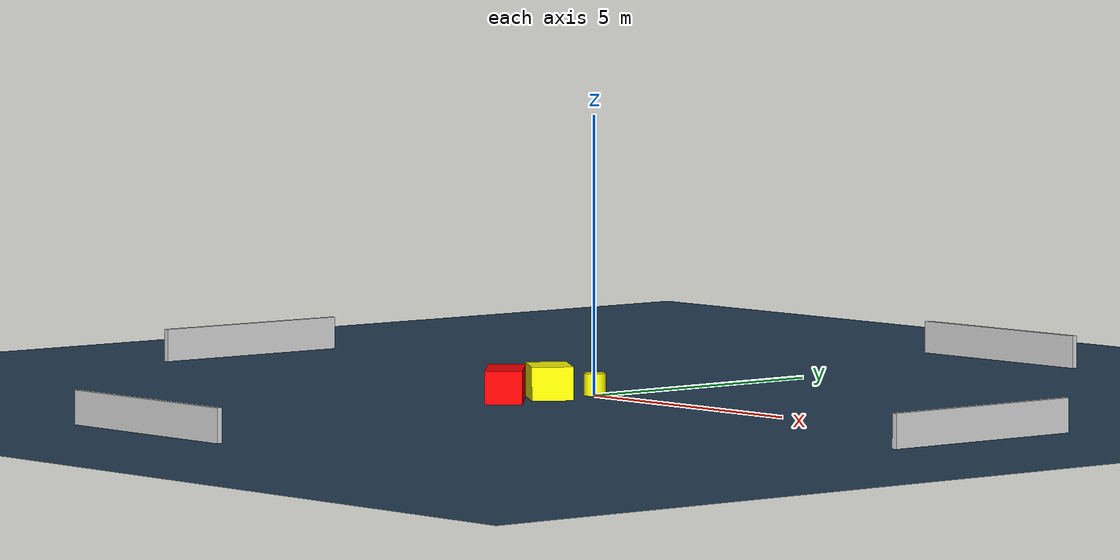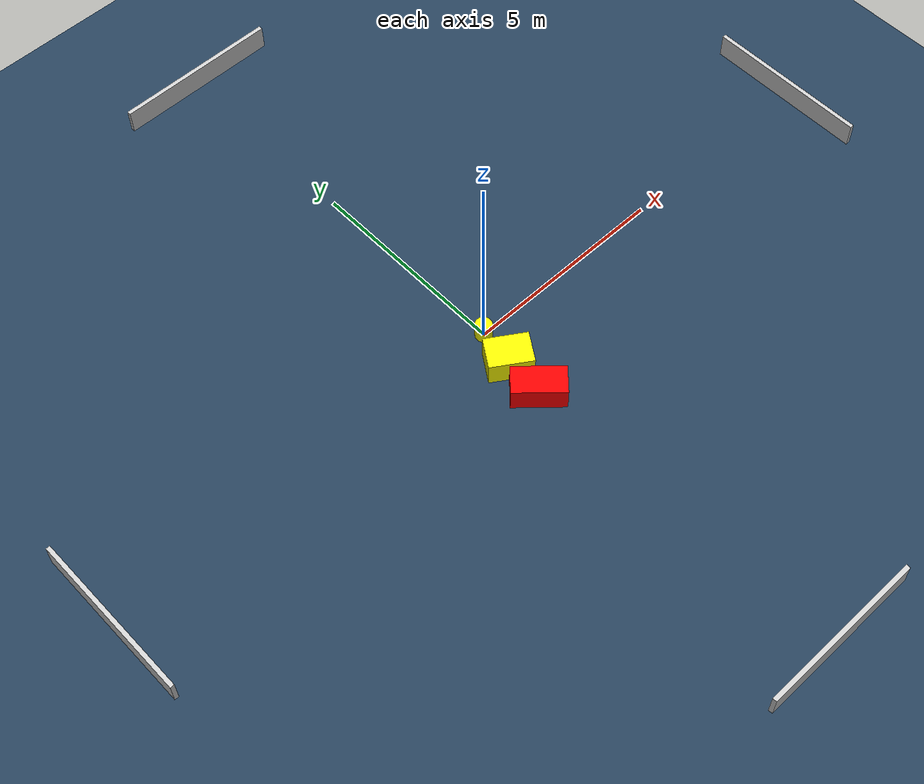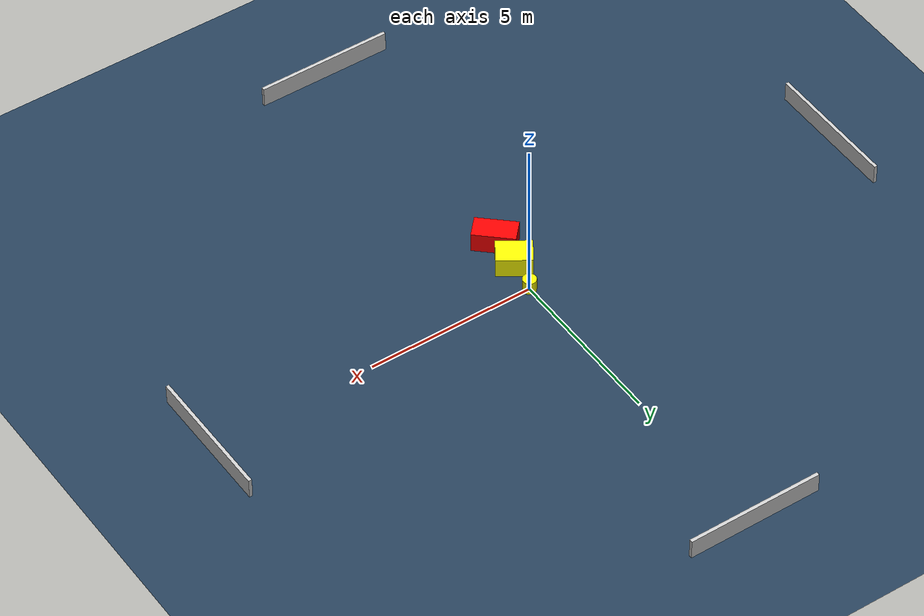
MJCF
<?xml version="1.0" ?>
<mujoco model="generated_environment">
  <option timestep="0.01" integrator="RK4" cone="elliptic"/>
  <default>
    <geom density="1"/>
  </default>
  <asset>
    <texture builtin="gradient" height="3072" name="skybox" rgb1="0.3 0.5 0.7" rgb2="0 0 0" type="skybox" width="512"/>
    <texture builtin="checker" height="300" name="groundplane" rgb1="0.2 0.3 0.4" rgb2="0.1 0.2 0.3" type="2d" width="300"/>
    <material name="groundplane" reflectance="0.2" texrepeat="5 5" texture="groundplane"/>
  </asset>
  <worldbody>
    <light dir="0 0 -1" directional="true" pos="0 0 1.5"/>
    <geom condim="3" friction="0.5 0.005 0.001" material="groundplane" name="floor" pos="0 0 0" size="0 0 0.05" type="plane"/>
    <body name="walls">
      <geom name="wall_1" condim="4" pos="-10.0 0.0 0.3" rgba="0.800000011920929 0.800000011920929 0.800000011920929 1.0" size="0.05 2.0 0.3" type="box"/>
      <geom name="wall_2" condim="4" pos="10.0 0.0 0.3" rgba="0.800000011920929 0.800000011920929 0.800000011920929 1.0" size="0.05 2.0 0.3" type="box"/>
      <geom name="wall_3" condim="4" pos="0.0 -10.0 0.3" rgba="0.800000011920929 0.800000011920929 0.800000011920929 1.0" size="2.0 0.05 0.3" type="box"/>
      <geom name="wall_4" condim="4" pos="0.0 10.0 0.3" rgba="0.800000011920929 0.800000011920929 0.800000011920929 1.0" size="2.0 0.05 0.3" type="box"/>
    </body>
    <body name="robot">
      <joint name="joint_x" type="slide" pos="0 0 0" axis="1 0 0"/>
      <joint name="joint_y" type="slide" pos="0 0 0" axis="0 1 0"/>
      <geom name="robot" type="cylinder" pos="0.0 0.0 0.2" size="0.2 0.2 0.0" mass="5.0" friction="1.0 0.005 0.0001" condim="4" rgba="1.0 1.0 0.0 1.0"/>
    </body>
    <body name="obstacle_1_movable">
      <geom name="obstacle_1_movable" condim="4" pos="-0.15178936048406852 -0.936782653986327 0.3" euler="0 0 56.84630828239264" friction="0.0 0.005 0.001" rgba="1.0 1.0 0.0 1.0" size="0.37405946338283724 0.5099644783476818 0.3" type="box" mass="0.1"/>
      <joint type="free"/>
    </body>
    <body name="obstacle_2_static">
      <geom name="obstacle_2_static" condim="4" pos="-0.2045677940483107 -1.911774458934001 0.3" euler="0 0 227.40006494917196" friction="0.0 0.005 0.001" rgba="1.0 0.0 0.0 1.0" size="0.3334654017876474 0.6154635110610311 0.3" type="box"/>
    </body>
  </worldbody>
  <actuator>
    <motor name="actuator_x" joint="joint_x" gear="1" ctrlrange="-1 1"/>
    <motor name="actuator_y" joint="joint_y" gear="1" ctrlrange="-1 1"/>
  </actuator>
</mujoco>
